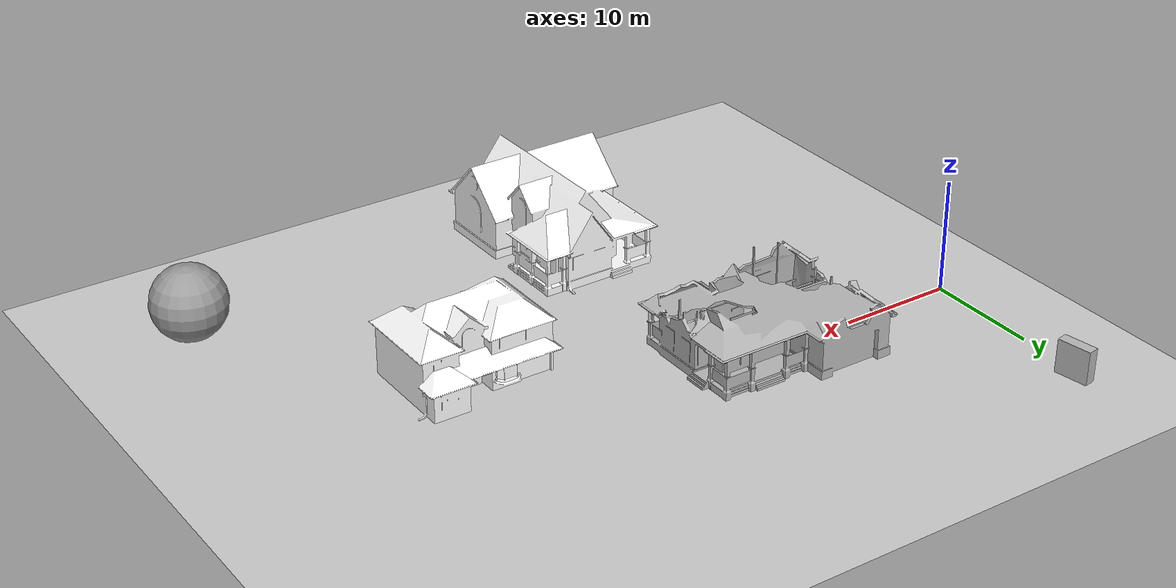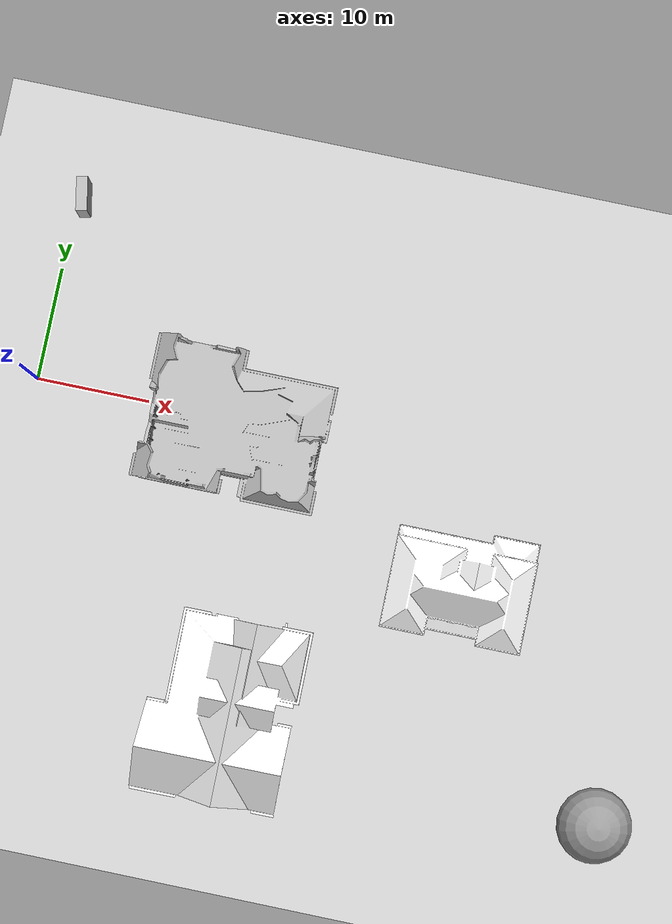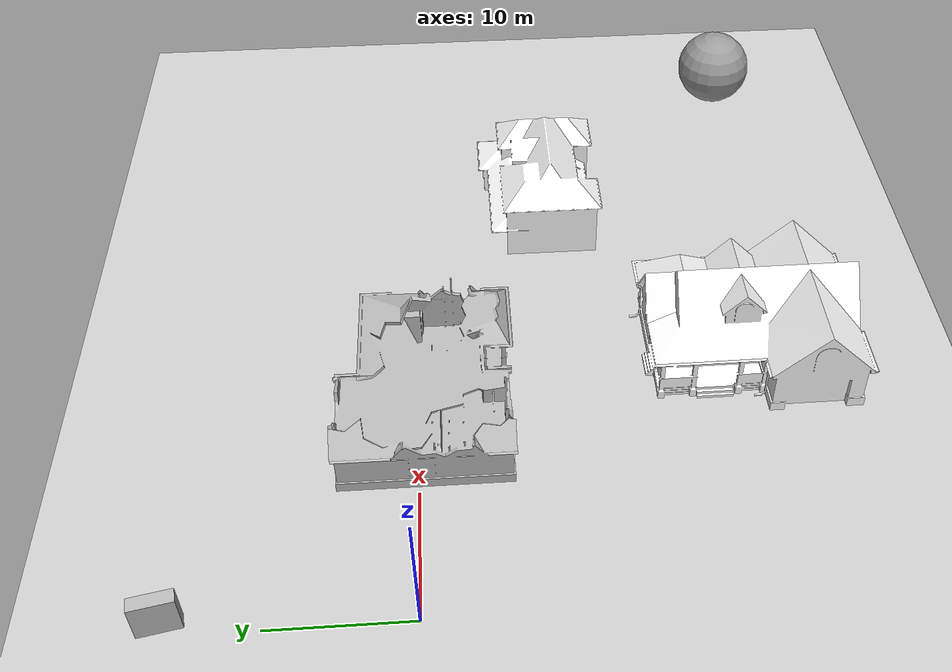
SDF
<sdf version="1.7">
 <world name="default">
  <physics type="ode">
   <ode>
    <solver>
     <type>quick</type>
     <iters>100</iters>
     <sor>1</sor>
     <use_dynamic_moi_rescaling>0</use_dynamic_moi_rescaling>
    </solver>
    <constraints>
     <cfm>0</cfm>
     <erp>0.9</erp>
     <contact_max_correcting_vel>0.1</contact_max_correcting_vel>
     <contact_surface_layer>0</contact_surface_layer>
    </constraints>
   </ode>
   <real_time_update_rate>1000</real_time_update_rate>
   <max_step_size>0.001</max_step_size>
   <real_time_factor>1</real_time_factor>
  </physics>
  <scene>
   <sky><clouds><speed>12</speed></clouds></sky>
   <ambient>0.4 0.4 0.4 1</ambient>
   <background>0.25 0.25 0.25 1</background>
   <shadows>1</shadows>
  </scene>
  <model name="ground_plane">
   <static>1</static>
   <link name="link">
    <collision name="collision">
     <geometry><plane><normal>0 0 1</normal><size>5000 5000</size></plane></geometry>
     <surface><friction><ode><mu>1</mu><mu2>1</mu2></ode></friction></surface>
    </collision>
    <visual name="runway">
     <pose>0 0 0.005 0 -0 0</pose>
     <cast_shadows>0</cast_shadows>
     <geometry><plane><normal>0 0 1</normal><size>1829 45</size></plane></geometry>
     <material>
      <script><uri>file://media/materials/scripts/gazebo.material</uri><name>Gazebo/Runway</name></script>
     </material>
    </visual>
    <visual name="grass">
     <pose>0 0 -0.1 0 -0 0</pose>
     <cast_shadows>0</cast_shadows>
     <geometry><plane><normal>0 0 1</normal><size>5000 5000</size></plane></geometry>
     <material>
      <script><uri>file://media/materials/scripts/gazebo.material</uri><name>Gazebo/Grass</name></script>
     </material>
    </visual>
   </link>
  </model>
  <light name="sun" type="directional">
   <pose>0 0 10 0 -0 0</pose>
   <diffuse>0.8 0.8 0.8 1</diffuse>
   <specular>0.2 0.2 0.2 1</specular>
   <attenuation>
    <range>1000</range>
    <constant>0.9</constant>
    <linear>0.01</linear>
    <quadratic>0.001</quadratic>
   </attenuation>
   <direction>-0.5 0.1 -0.9</direction>
   <spot><inner_angle>0</inner_angle><outer_angle>0</outer_angle><falloff>0</falloff></spot>
  </light>
  <gravity>0 0 -9.8</gravity>
  <magnetic_field>6e-06 2.3e-05 -4.2e-05</magnetic_field>
  <atmosphere type="adiabatic"/>
  <spherical_coordinates>
   <surface_model>EARTH_WGS84</surface_model>
   <latitude_deg>0</latitude_deg>
   <longitude_deg>0</longitude_deg>
   <elevation>0</elevation>
   <heading_deg>0</heading_deg>
  </spherical_coordinates>
  <model name="brick_box_3x1x3">
   <static>1</static>
   <link name="chassis">
    <pose>0 0 1.5 0 -0 0</pose>
    <collision name="collision"><geometry><box><size>3 1 3</size></box></geometry></collision>
    <visual name="visual">
     <geometry><mesh><uri>model://brick_box_3x1x3/meshes/simple_box.dae</uri><scale>3 1 3</scale></mesh></geometry>
     <material>
      <script>
       <uri>model://brick_box_3x1x3/materials/scripts</uri>
       <uri>model://brick_box_3x1x3/materials/textures</uri>
       <name>BrickBox/Diffuse</name>
      </script>
     </material>
    </visual>
   </link>
   <pose>0.788917 16.3792 0 -0.002467 0.012955 1.75438</pose>
  </model>
  <model name="unit_sphere">
   <pose>55.3885 -28.1148 3.26019 0 -0 0</pose>
   <link name="link">
    <inertial>
     <mass>1</mass>
     <inertia><ixx>0.1</ixx><ixy>0</ixy><ixz>0</ixz><iyy>0.1</iyy><iyz>0</iyz><izz>0.1</izz></inertia>
    </inertial>
    <collision name="collision"><geometry><sphere><radius>3.26019</radius></sphere></geometry></collision>
    <visual name="visual">
     <geometry><sphere><radius>3.26019</radius></sphere></geometry>
     <material>
      <script><name>Gazebo/Grey</name><uri>file://media/materials/scripts/gazebo.material</uri></script>
     </material>
    </visual>
   </link>
  </model>
  <model name="collapsed_house">
   <static>1</static>
   <link name="link">
    <collision name="collision">
     <geometry>
      <mesh><scale>1.5 1.5 1.5</scale><uri>model://collapsed_house/meshes/collapsed_house.dae</uri></mesh>
     </geometry>
    </collision>
    <visual name="visual">
     <geometry>
      <mesh><scale>1.5 1.5 1.5</scale><uri>model://collapsed_house/meshes/collapsed_house.dae</uri></mesh>
     </geometry>
    </visual>
   </link>
   <pose>18.1257 -0.60922 0 0 -0 0</pose>
  </model>
  <model name="House 1">
   <static>1</static>
   <link name="link">
    <collision name="collision">
     <geometry><mesh><uri>model://house_1/meshes/house_1.dae</uri><scale>1.5 1.5 1.5</scale></mesh></geometry>
    </collision>
    <visual name="visual">
     <geometry><mesh><uri>model://house_1/meshes/house_1.dae</uri><scale>1.5 1.5 1.5</scale></mesh></geometry>
     <material>
      <script>
       <uri>model://house_1/materials/scripts</uri>
       <uri>model://house_1/materials/textures</uri>
       <name>House_1/Diffuse</name>
      </script>
      <shader type="normal_map_tangent_space"><normal_map>House_1_Normal.png</normal_map></shader>
     </material>
    </visual>
   </link>
   <pose>22.4286 -25.2438 0 0 0 -1.56419</pose>
  </model>
  <model name="House 2">
   <static>1</static>
   <link name="link">
    <collision name="collision">
     <geometry><mesh><uri>model://house_2/meshes/house_2.dae</uri><scale>1.5 1.5 1.5</scale></mesh></geometry>
    </collision>
    <visual name="visual">
     <geometry><mesh><uri>model://house_2/meshes/house_2.dae</uri><scale>1.5 1.5 1.5</scale></mesh></geometry>
     <material>
      <script>
       <uri>model://house_2/materials/scripts</uri>
       <uri>model://house_2/materials/textures</uri>
       <uri>model://house_1/materials/textures</uri>
       <name>House_2/Diffuse</name>
      </script>
      <shader type="normal_map_tangent_space">
       <normal_map>model://house_1/materials/textures/House_1_Normal.png</normal_map>
      </shader>
     </material>
    </visual>
   </link>
   <pose>38.9495 -11.0485 0 0 -0 0</pose>
  </model>
 </world>
</sdf>
